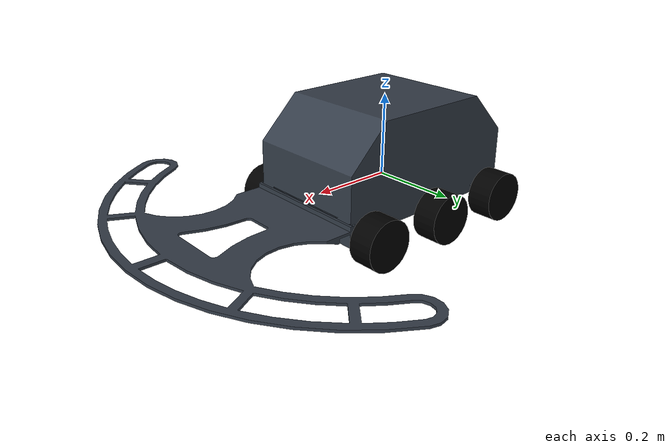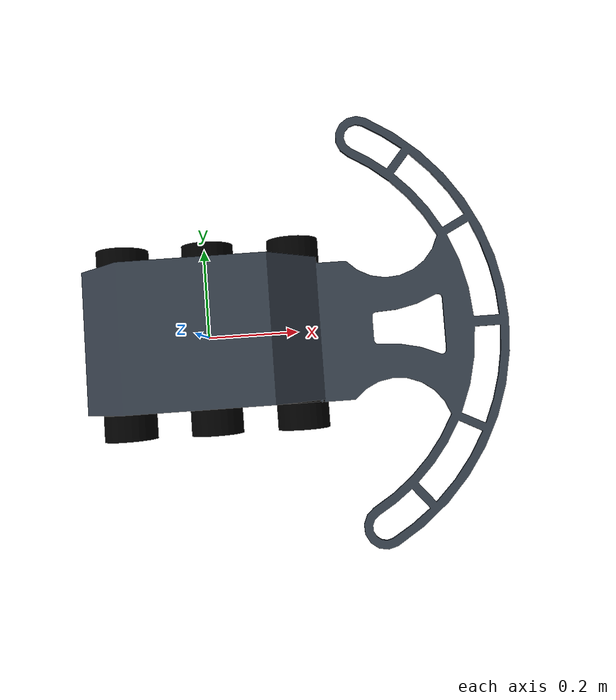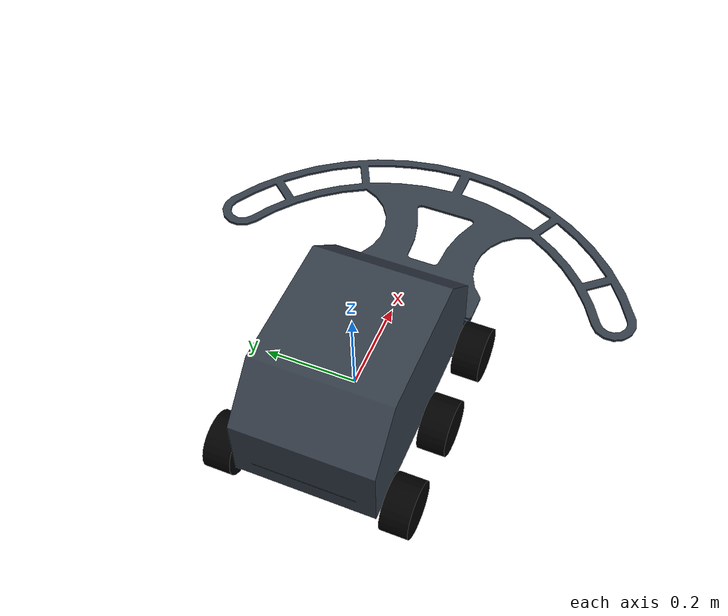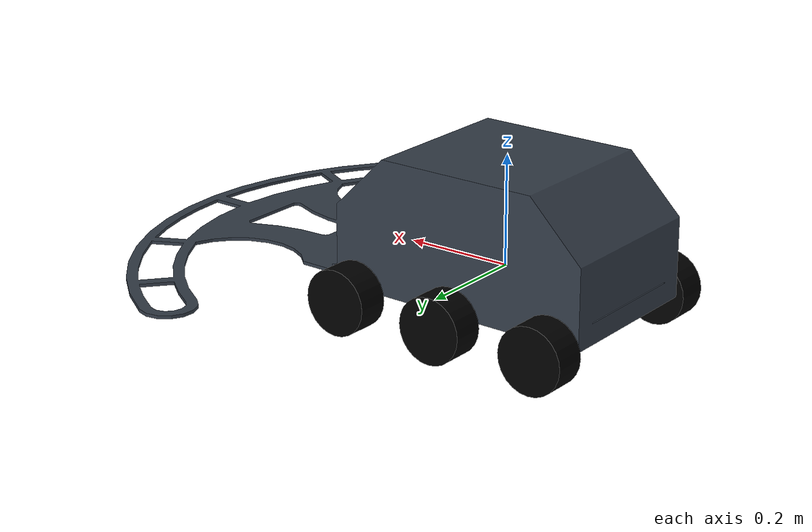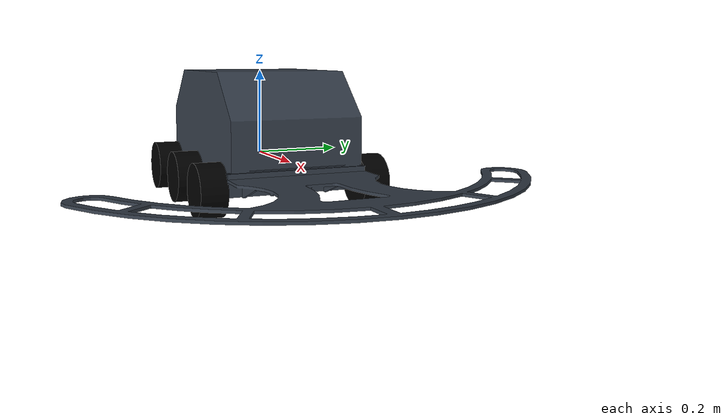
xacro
<?xml version="1.0" ?>

<robot name="mine" xmlns:xacro="https://www.ros.org/wiki/xacro" >

  <xacro:property name="wheel_radius" value=".06"/>
  <xacro:property name="wheel_length" value=".06"/>
  <xacro:property name="box_length" value=".52"/>
  <xacro:property name="box_width" value=".32"/>
  <xacro:property name="box_height" value=".20"/>
  <xacro:property name="PI" value="3.1415"/>
  <xacro:property name="wheel_mass" value=".25"/>

  <xacro:include filename="$(find robot_description)/urdf/macros.xacro"/>

  <material name="black">
    <color rgba="0.0 0.0 0.0 1.0"/>
  </material>
  <material name="blue">
    <color rgba="0.203125 0.23828125 0.28515625 1.0"/>
  </material>
  <material name="green">
    <color rgba="0.0 0.8 0.0 1.0"/>
  </material>
  <material name="grey">
    <color rgba="0.2 0.2 0.2 1.0"/>
  </material>
  <material name="orange">
    <color rgba="1.0 0.423529411765 0.0392156862745 1.0"/>
  </material>
  <material name="brown">
    <color rgba="0.870588235294 0.811764705882 0.764705882353 1.0"/>
  </material>
  <material name="red">
    <color rgba="0.80078125 0.12890625 0.1328125 1.0"/>
  </material>
  <material name="white">
    <color rgba="1.0 1.0 1.0 1.0"/>
  </material>

  <gazebo reference="link_chassis">
    <material>Gazebo/Orange</material>
  </gazebo>

  <gazebo>
    <plugin name="diff_drive_plugin" filename="libdiffdrive_plugin_6w.so">
      <legacyMode>false</legacyMode>
      <rosDebugLevel>Debug</rosDebugLevel>
      <publishWheelTF>false</publishWheelTF>
      <publishWheelJointState>true</publishWheelJointState>
      <publishOdomTF>true</publishOdomTF>
      <alwaysOn>true</alwaysOn>
      <updateRate>10.0</updateRate>
      <frontLeftJoint>joint_front_left_wheel</frontLeftJoint>
      <midLeftJoint>joint_center_left_wheel</midLeftJoint>
      <rearLeftJoint>joint_rear_left_wheel</rearLeftJoint>
      <frontRightJoint>joint_front_right_wheel</frontRightJoint>
      <midRightJoint>joint_center_right_wheel</midRightJoint>
      <rearRightJoint>joint_rear_right_wheel</rearRightJoint>
      <wheelSeparation>${box_width}</wheelSeparation>
      <wheelDiameter>${wheel_radius*2}</wheelDiameter>
      <wheelTorque>10</wheelTorque>
      <commonTopic>cmd_vel</commonTopic>
      <odometryTopic>odom</odometryTopic>
      <odometryFrame>open</odometryFrame>
      <odometrySource>world</odometrySource>
      <robotBaseFrame>link_chassis</robotBaseFrame>
    </plugin>
    <plugin name="joint_state_publisher"
    filename="libgazebo_ros_joint_state_publisher.so">
      <jointName>joint_front_left_wheel, joint_center_left_wheel, joint_rear_left_wheel, joint_front_right_wheel, joint_center_right_wheel, joint_rear_right_wheel</jointName>
    </plugin>
  </gazebo>
  <link name="link_chassis">
    <!-- pose and inertial -->
    <pose>0 0 ${box_height/2+.1} 0 0 0</pose>

    <inertial>
      <mass value="5"/>
      <origin rpy="0 0 0" xyz="0 0 0.1"/>
      <inertia ixx="0.0395416666667" ixy="0" ixz="0" iyy="0.106208333333" iyz="0" izz="0.106208333333"/>
    </inertial>

    <collision name="collision_chassis">
      <geometry>
        <!--box size="${box_length} ${box_width} ${box_height}"/-->
        <mesh
          filename="package://robot_description/meshes/link_chassis.STL" />
      </geometry>
    </collision>

    <visual>
      <origin rpy="0 0 0" xyz="0 0 0"/>
      <geometry>
        <!--box size="${box_length} ${box_width} ${box_height}"/-->
        <mesh
          filename="package://robot_description/meshes/link_chassis.STL" />
      </geometry>
      <material name="blue"/>
    </visual>
  </link>
  <link name="metal_detector_link">
  </link>
  <joint name="metal_detector_joint" type="fixed">
    <origin xyz=".64 0 .06" rpy="0 0 3.1416"/>
    <parent link="link_chassis"/>
    <child link="metal_detector_link"/>

    <calibration rising="0.0"/>
    <dynamics damping="0.0" friction="0.0"/>
    <limit effort="30" velocity="1.0" lower="-2.2" upper="0.7" />
    <safety_controller k_velocity="10" k_position="15" soft_lower_limit="-2.0" soft_upper_limit="0.5" />
  </joint>
  <wheel wheel_prefix="center_left">
    <origin rpy="0 0 0" xyz="0 ${-box_width/2-wheel_length/2} ${-box_height/2+.05}"/>
  </wheel>
  <wheel wheel_prefix="center_right">
    <origin rpy="0 0 0" xyz="0 ${box_width/2+wheel_length/2} ${-box_height/2+.05}"/>
  </wheel>
  <wheel wheel_prefix="front_left">
    <origin rpy="0 0 0" xyz="${box_length/2-wheel_radius} ${-box_width/2-wheel_length/2} ${-box_height/2+.05}"/>
  </wheel>
  <wheel wheel_prefix="rear_left">
    <origin rpy="0 0 0" xyz="${-box_length/2+wheel_radius} ${-box_width/2-wheel_length/2} ${-box_height/2+.05}"/>
  </wheel>
  <wheel wheel_prefix="front_right">
    <origin rpy="0 0 0" xyz="${box_length/2-wheel_radius} ${box_width/2+wheel_length/2} ${-box_height/2+.05}"/>
  </wheel>
  <wheel wheel_prefix="rear_right">
    <origin rpy="0 0 0" xyz="${-box_length/2+wheel_radius} ${box_width/2+wheel_length/2} ${-box_height/2+.05}"/>
  </wheel>

</robot>

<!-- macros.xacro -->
<robot xmlns:xacro="https://www.ros.org/wiki/xacro">
  <macro name="cylinder_inertia" params="m r h">
    <inertia  ixx="${m*(3*r*r+h*h)/12}" ixy = "0" ixz = "0"
      iyy="${m*(3*r*r+h*h)/12}" iyz = "0"
      izz="${m*r*r/2}"
    />
  </macro>
  <macro name="box_inertia" params="m x y z">
    <inertia  ixx="${m*(y*y+z*z)/12}" ixy = "0" ixz = "0"
      iyy="${m*(x*x+z*z)/12}" iyz = "0"
      izz="${m*(x*x+z*z)/12}"
    />
  </macro>
  <macro name="sphere_inertia" params="m r">
    <inertia  ixx="${2*m*r*r/5}" ixy = "0" ixz = "0"
      iyy="${2*m*r*r/5}" iyz = "0"
      izz="${2*m*r*r/5}"
    />
  </macro>
  <macro name="wheel" params="wheel_prefix *joint_pose">
    <link name="link_${wheel_prefix}_wheel">
      <collision>
        <origin xyz="0 0 0" rpy="0 ${PI/2} ${PI/2}" />
        <geometry>
          <cylinder length="${wheel_length}" radius="${wheel_radius}"/>
	  <!--mesh
          filename="package://robot_description/meshes/link_center_left_wheel.STL" /-->
        </geometry>
      </collision>
      <visual>
        <origin xyz="0 0 0" rpy="0 ${PI/2} ${PI/2}" />
        <geometry>
          <cylinder length="${wheel_length}" radius="${wheel_radius}"/>
          <!--mesh
          filename="package://robot_description/meshes/link_center_left_wheel.STL" /-->
        </geometry>
        <material name="black"/>
      </visual>
      <inertial>
        <origin xyz="0 0 0" rpy="0 ${PI/2} ${PI/2}" />
        <mass value="${wheel_mass}"/>
        <cylinder_inertia m="${wheel_mass}" r="${wheel_radius}" h="${wheel_length}"/>
      </inertial>
    </link>
    <gazebo reference="link_${wheel_prefix}_wheel">
      <mu1 value="0.4"/>
      <mu2 value="0.4"/>
      <kp  value="10000000.0" />
      <kd  value="1.0" />
      <fdir1 value="0 1 0"/>
      <material>Gazebo/Black</material>
    </gazebo>
    <joint name="joint_${wheel_prefix}_wheel" type="continuous">
      <parent link="link_chassis"/>
      <child link="link_${wheel_prefix}_wheel"/>
      <xacro:insert_block name="joint_pose"/>
      <axis xyz="0 1 0" rpy="0 0 0" />
      <limit effort="10000" velocity="10000"/>
      <joint_properties damping="0.0" friction="0.0"/>
    </joint>
    <transmission name="${wheel_prefix}_wheel_trans" type="SimpleTransmission">
      <type>transmission_interface/SimpleTransmission</type>
      <actuator name="${wheel_prefix}_wheel_motor">
        <mechanicalReduction>1</mechanicalReduction>
      </actuator>
      <joint name="joint_${wheel_prefix}_wheel">
        <hardwareInterface>hardware_interface/VelocityJointInterface</hardwareInterface>
      </joint>
    </transmission>
  </macro>
</robot>
